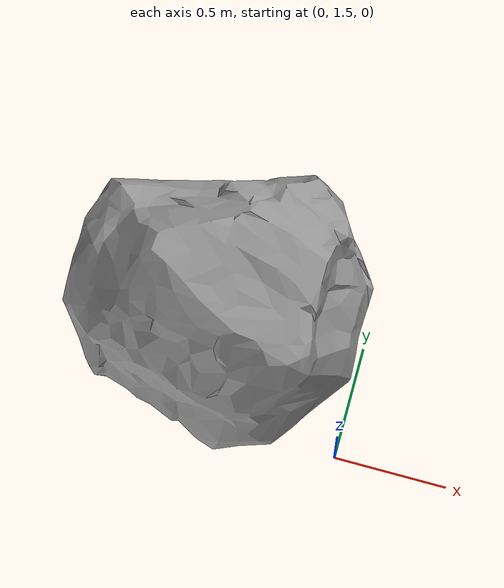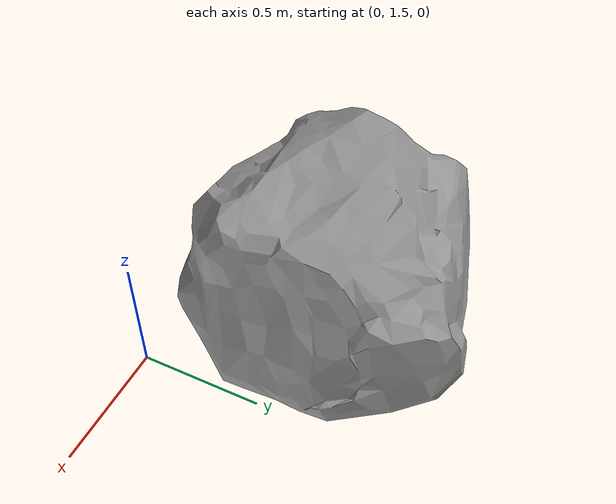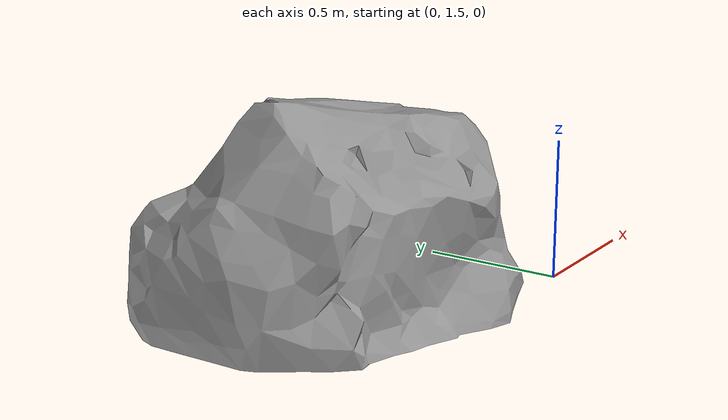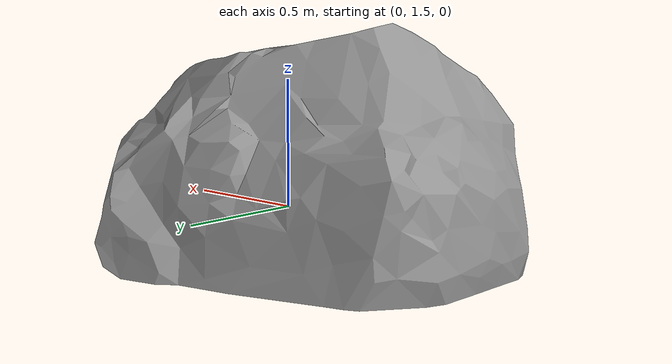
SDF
<?xml version='1.0'?>
<sdf version='1.6'>
  <model name='rock1_model_10'>
    <link name='rock_link'>
      <inertial>
        <mass>1</mass>
        <inertia>
          <ixx>0.1</ixx>
          <ixy>0</ixy>
          <ixz>0</ixz>
          <iyy>0.1</iyy>
          <iyz>0</iyz>
          <izz>0.1</izz>
        </inertia>
        <pose frame=''>0 0 0 0 -0 0</pose>
      </inertial>
      <self_collide>0</self_collide>
      <enable_wind>0</enable_wind>
      <kinematic>0</kinematic>
      <pose frame=''>0 0 0 0 -0 0</pose>
      <gravity>1</gravity>
      <visual name='rock_visual'>
        <geometry>
          <mesh>
            <uri>file:///home/ros_workspace/src/mapping/worlds/rocks/rock-3_mod.stl</uri>
            <scale>0.15 0.15 0.15</scale>
          </mesh>
        </geometry>
        <material>
          <script>
            <uri>file://media/materials/scripts/gazebo.material</uri>
            <name>Gazebo/Grey</name>
          </script>
          <shader type='vertex'>
            <normal_map>__default__</normal_map>
          </shader>
          <ambient>0.3 0.3 0.3 1</ambient>
          <diffuse>0.7 0.7 0.7 1</diffuse>
          <specular>0.01 0.01 0.01 1</specular>
          <emissive>0 0 0 1</emissive>
        </material>
        <pose frame=''>0 0 0 0 -0 0</pose>
        <transparency>0</transparency>
        <cast_shadows>1</cast_shadows>
      </visual>
      <collision name='rock_collision'>
        <laser_retro>0</laser_retro>
        <max_contacts>10</max_contacts>
        <pose frame=''>0 0 0 0 -0 0</pose>
        <geometry>
          <mesh>
            <uri>/home/ros_workspace/src/mapping/worlds/rocks/rock-3_mod.stl</uri>
            <scale>0.15 0.15 0.35</scale>
          </mesh>
        </geometry>
        <surface>
          <friction>
            <ode>
              <mu>1</mu>
              <mu2>1</mu2>
              <fdir1>0 0 0</fdir1>
              <slip1>0</slip1>
              <slip2>0</slip2>
            </ode>
            <torsional>
              <coefficient>1</coefficient>
              <patch_radius>0</patch_radius>
              <surface_radius>0</surface_radius>
              <use_patch_radius>1</use_patch_radius>
              <ode>
                <slip>0</slip>
              </ode>
            </torsional>
          </friction>
          <bounce>
            <restitution_coefficient>0</restitution_coefficient>
            <threshold>1e+06</threshold>
          </bounce>
          <contact>
            <collide_without_contact>0</collide_without_contact>
            <collide_without_contact_bitmask>1</collide_without_contact_bitmask>
            <collide_bitmask>1</collide_bitmask>
            <ode>
              <soft_cfm>0</soft_cfm>
              <soft_erp>0.2</soft_erp>
              <kp>1e+13</kp>
              <kd>1</kd>
              <max_vel>0.01</max_vel>
              <min_depth>0</min_depth>
            </ode>
            <bullet>
              <split_impulse>1</split_impulse>
              <split_impulse_penetration_threshold>-0.01</split_impulse_penetration_threshold>
              <soft_cfm>0</soft_cfm>
              <soft_erp>0.2</soft_erp>
              <kp>1e+13</kp>
              <kd>1</kd>
            </bullet>
          </contact>
        </surface>
      </collision>
    </link>
    <static>1</static>
    <allow_auto_disable>1</allow_auto_disable>
  </model>
</sdf>
